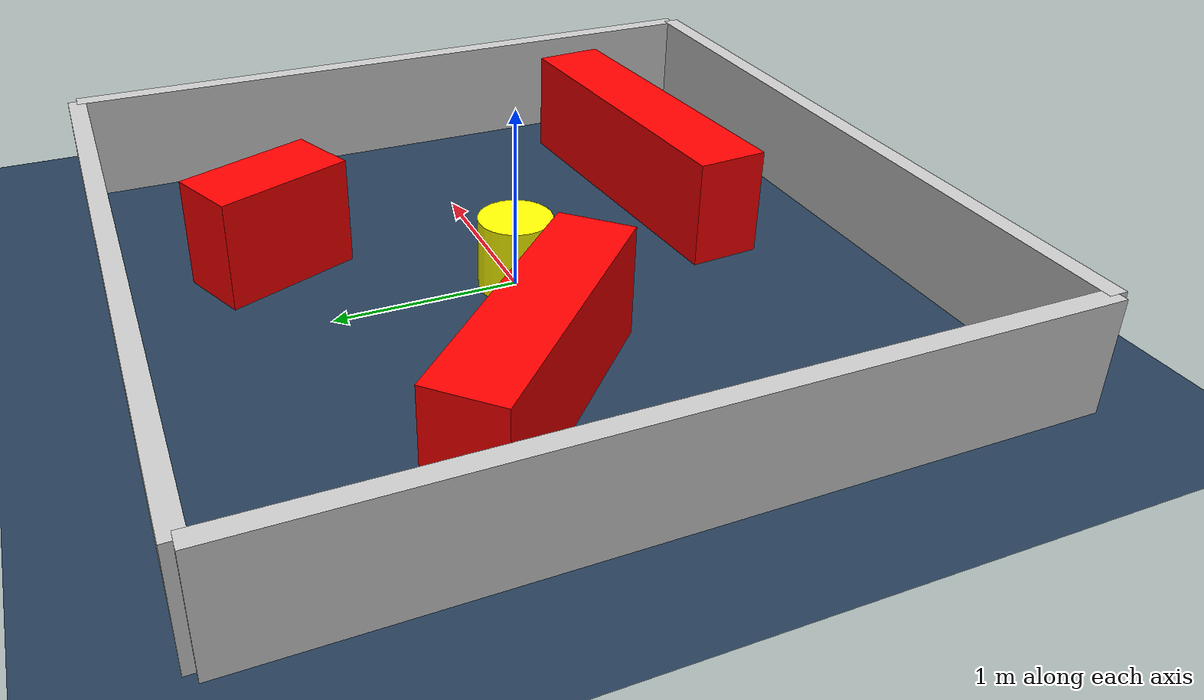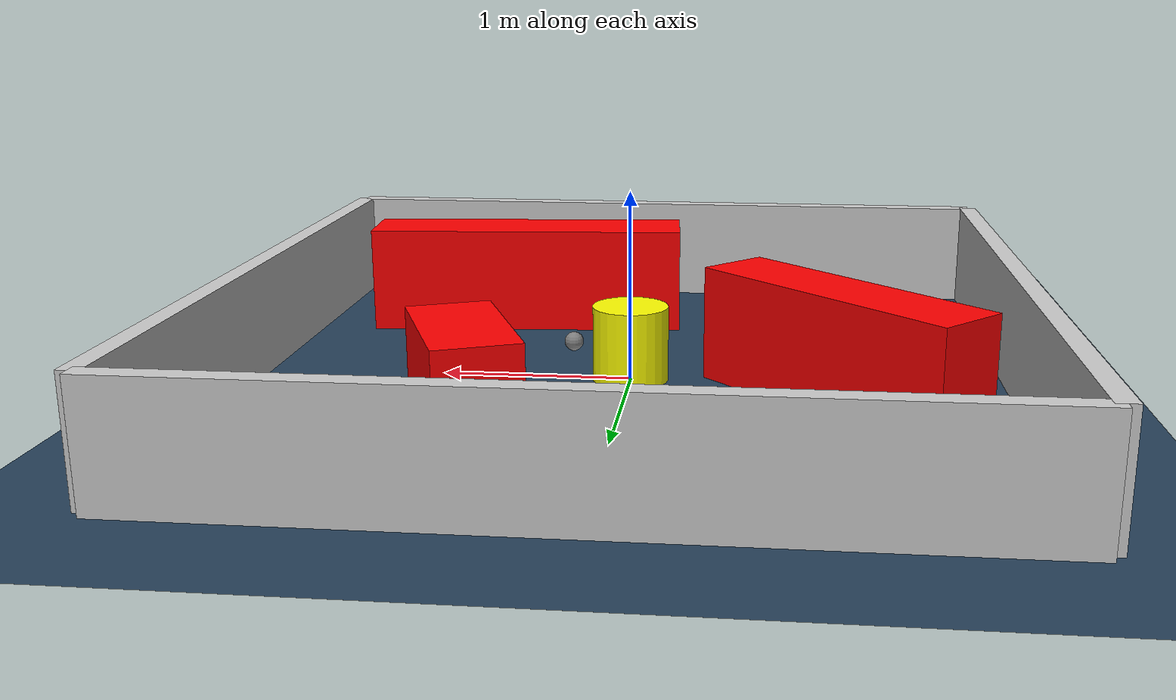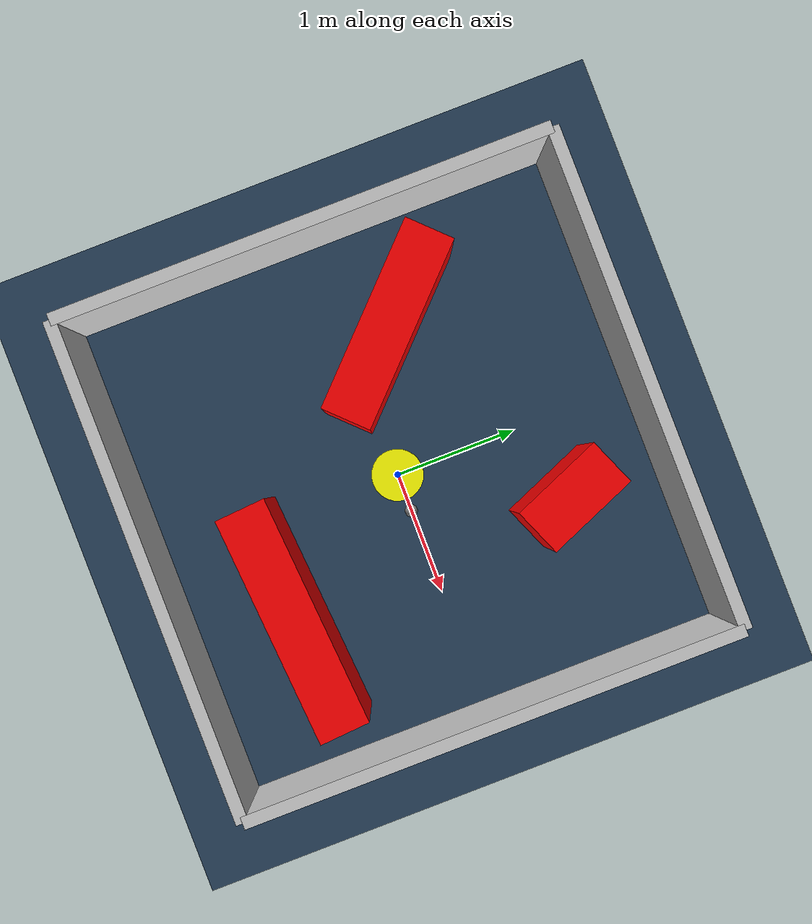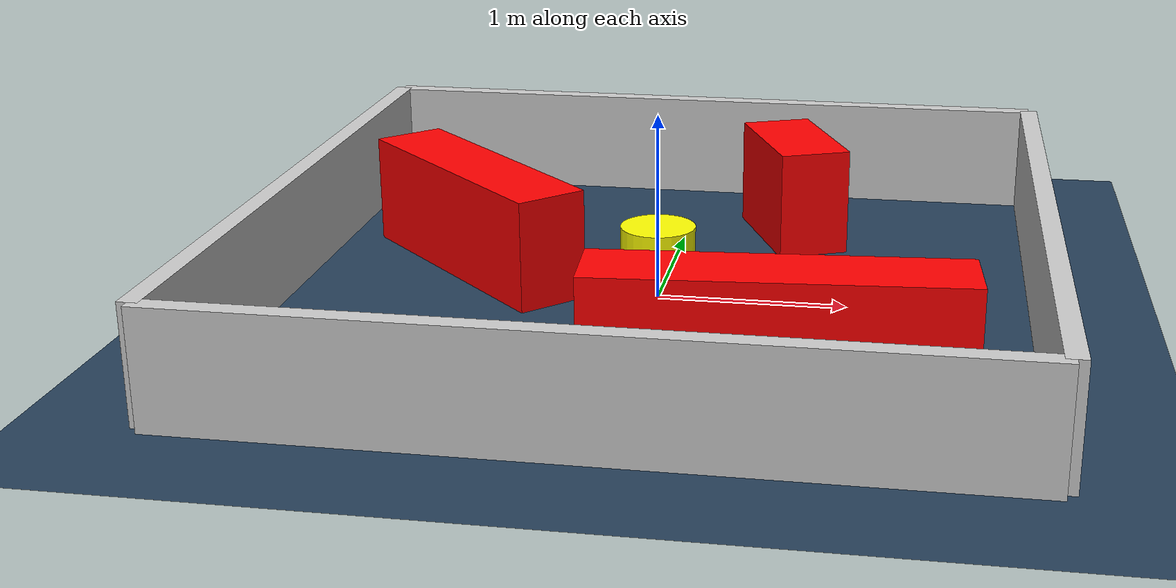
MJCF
<?xml version="1.0" ?>
<mujoco model="generated_environment">
  <option timestep="0.01" integrator="RK4" cone="elliptic"/>
  <default>
    <geom density="1"/>
  </default>
  <asset>
    <texture builtin="gradient" height="3072" rgb1="0.3 0.5 0.7" rgb2="0 0 0" type="skybox" width="512"/>
    <texture builtin="checker" height="300" mark="edge" markrgb="0.8 0.8 0.8" name="groundplane" rgb1="0.2 0.3 0.4" rgb2="0.1 0.2 0.3" type="2d" width="300"/>
    <material name="groundplane" reflectance="0.2" texrepeat="5 5" texture="groundplane" texuniform="true"/>
    <material name="robot" rgba="0.0 1.0 0.0 1"/>
  </asset>
  <worldbody>
    <light dir="0 0 -1" directional="true" pos="0 0 1.5"/>
    <geom condim="4" friction="1.0 0.005 0.001" material="groundplane" name="floor" size="0 0 0.05" type="plane"/>
    <body name="walls">
      <geom name="wall_1" condim="4" pos="-2.0 0.0 0.3" rgba="0.800000011920929 0.800000011920929 0.800000011920929 1.0" size="0.05 2.0 0.3" type="box"/>
      <geom name="wall_2" condim="4" pos="2.0 0.0 0.3" rgba="0.800000011920929 0.800000011920929 0.800000011920929 1.0" size="0.05 2.0 0.3" type="box"/>
      <geom name="wall_3" condim="4" pos="0.0 -2.0 0.3" rgba="0.800000011920929 0.800000011920929 0.800000011920929 1.0" size="2.0 0.05 0.3" type="box"/>
      <geom name="wall_4" condim="4" pos="0.0 2.0 0.3" rgba="0.800000011920929 0.800000011920929 0.800000011920929 1.0" size="2.0 0.05 0.3" type="box"/>
    </body>
    <body name="robot">
      <joint name="joint_x" type="slide" pos="0 0 0" axis="1 0 0"/>
      <joint name="joint_y" type="slide" pos="0 0 0" axis="0 1 0"/>
      <geom name="robot" type="sphere" pos="0.3 0.0 0.2" size="0.05" mass="5." friction="1.0 0.005 0.0001" condim="4" rgba="0.5 0.5 0.5 1.0"/>
      <site name="sensor_ball"/>
    </body>
    <body name="obstacle_movable_1">
      <geom name="obstacle_movable_1" condim="4" pos="0.0 0.0 0.2" euler="0 0 0.0" friction="1.0 0.005 0.001" rgba="1.0 1.0 0.0 1.0" size="0.2 0.2 0.0" type="cylinder" mass="0.1"/>
      <joint type="free"/>
    </body>
    <body name="obstacle_2_static">
      <geom name="obstacle_2_static" condim="4" pos="0.7373923574259458 -1.1199089892329432 0.3" euler="0 0 184.26089994685185" friction="1.0 0.005 0.001" rgba="1 0 0 1" size="0.9179511023966311 0.2 0.3" type="box"/>
    </body>
    <body name="obstacle_3_static">
      <geom name="obstacle_3_static" condim="4" pos="0.626527905424441 1.167901164277753 0.3" euler="0 0 292.5757643903263" friction="1.0 0.005 0.001" rgba="1 0 0 1" size="0.38231153570394616 0.2 0.3" type="box"/>
    </body>
    <body name="obstacle_4_static">
      <geom name="obstacle_4_static" condim="4" pos="-1.0753236679852214 0.3342039183224814 0.3" euler="0 0 315.2303520675453" friction="1.0 0.005 0.001" rgba="1 0 0 1" size="0.7764265102956852 0.2 0.3" type="box"/>
    </body>
  </worldbody>
  <actuator>
    <motor name="actuator_x" joint="joint_x" gear="1" ctrlrange="-1 1"/>
    <motor name="actuator_y" joint="joint_y" gear="1" ctrlrange="-1 1"/>
  </actuator>
</mujoco>
